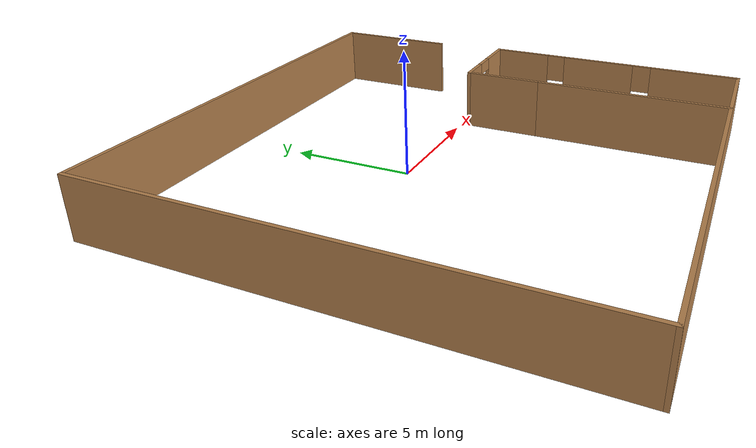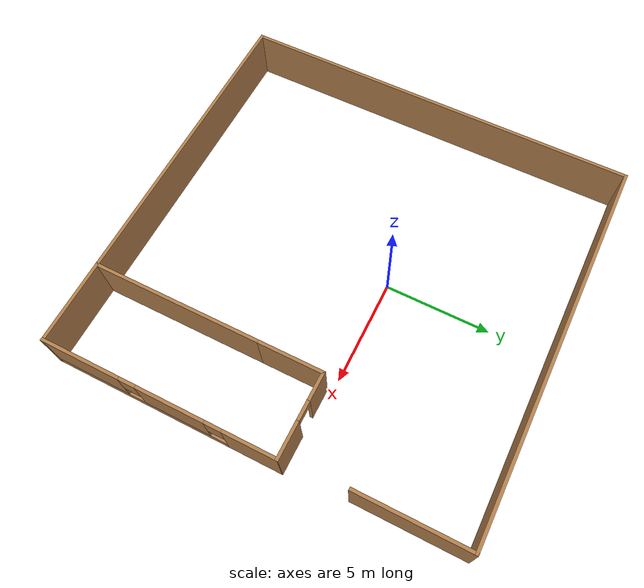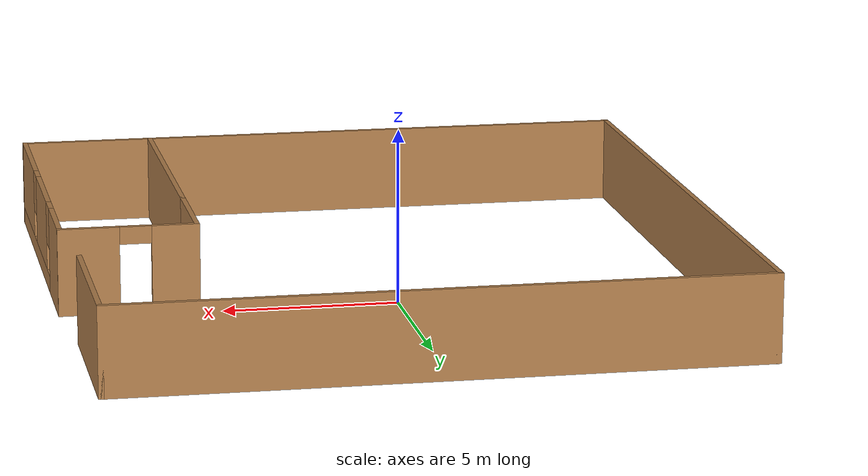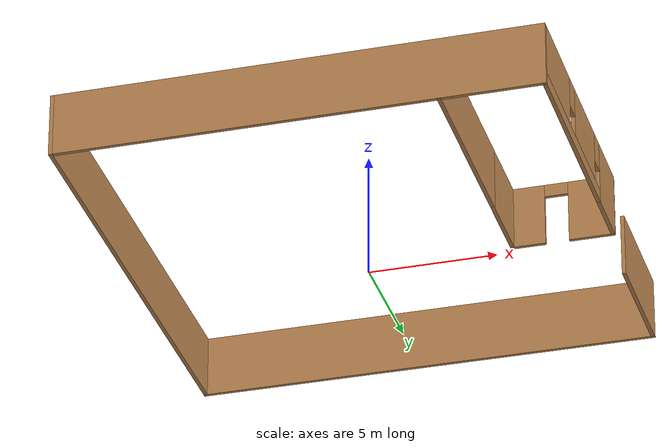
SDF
<?xml version='1.0'?>
<sdf version='1.7'>
  <model name='warehouse.world'>
    <pose>0.341818 -1.74506 0 0 -0 0</pose>
    <link name='Wall_10'>
      <collision name='Wall_10_Collision'>
        <geometry>
          <box>
            <size>19.25 0.15 2.5</size>
          </box>
        </geometry>
        <pose>0 0 1.25 0 -0 0</pose>
      </collision>
      <visual name='Wall_10_Visual'>
        <pose>0 0 1.25 0 -0 0</pose>
        <geometry>
          <box>
            <size>19.25 0.15 2.5</size>
          </box>
        </geometry>
        <material>
          <script>
            <uri>file://media/materials/scripts/gazebo.material</uri>
            <name>Gazebo/Wood</name>
          </script>
          <ambient>1 1 1 1</ambient>
        </material>
        <meta>
          <layer>0</layer>
        </meta>
      </visual>
      <pose>-9.175 -0 0 0 -0 1.5708</pose>
    </link>
    <link name='Wall_11'>
      <collision name='Wall_11_Collision'>
        <geometry>
          <box>
            <size>18.25 0.15 2.5</size>
          </box>
        </geometry>
        <pose>0 0 1.25 0 -0 0</pose>
      </collision>
      <visual name='Wall_11_Visual'>
        <pose>0 0 1.25 0 -0 0</pose>
        <geometry>
          <box>
            <size>18.25 0.15 2.5</size>
          </box>
        </geometry>
        <material>
          <script>
            <uri>file://media/materials/scripts/gazebo.material</uri>
            <name>Gazebo/Wood</name>
          </script>
          <ambient>1 1 1 1</ambient>
        </material>
        <meta>
          <layer>0</layer>
        </meta>
      </visual>
      <pose>-0.125 9.55 0 0 -0 0</pose>
    </link>
    <link name='Wall_12'>
      <collision name='Wall_12_Collision'>
        <geometry>
          <box>
            <size>5.25 0.15 2.5</size>
          </box>
        </geometry>
        <pose>0 0 1.25 0 -0 0</pose>
      </collision>
      <visual name='Wall_12_Visual'>
        <pose>0 0 1.25 0 -0 0</pose>
        <geometry>
          <box>
            <size>5.25 0.15 2.5</size>
          </box>
        </geometry>
        <material>
          <script>
            <uri>file://media/materials/scripts/gazebo.material</uri>
            <name>Gazebo/Wood</name>
          </script>
          <ambient>1 1 1 1</ambient>
        </material>
        <meta>
          <layer>0</layer>
        </meta>
      </visual>
      <pose>8.925 7 0 0 -0 -1.5708</pose>
    </link>
    <link name='Wall_14'>
      <collision name='Wall_14_Collision'>
        <geometry>
          <box>
            <size>3.25 0.15 2.5</size>
          </box>
        </geometry>
        <pose>0 0 1.25 0 -0 0</pose>
      </collision>
      <visual name='Wall_14_Visual'>
        <pose>0 0 1.25 0 -0 0</pose>
        <geometry>
          <box>
            <size>3.25 0.15 2.5</size>
          </box>
        </geometry>
        <material>
          <script>
            <uri>file://media/materials/scripts/gazebo.material</uri>
            <name>Gazebo/Wood</name>
          </script>
          <ambient>1 1 1 1</ambient>
        </material>
        <meta>
          <layer>0</layer>
        </meta>
      </visual>
      <pose>5.325 -0.121264 0 0 -0 -1.5708</pose>
    </link>
    <link name='Wall_15'>
      <collision name='Wall_15_Collision'>
        <geometry>
          <box>
            <size>8 0.15 2.5</size>
          </box>
        </geometry>
        <pose>0 0 1.25 0 -0 0</pose>
      </collision>
      <visual name='Wall_15_Visual'>
        <pose>0 0 1.25 0 -0 0</pose>
        <geometry>
          <box>
            <size>8 0.15 2.5</size>
          </box>
        </geometry>
        <material>
          <script>
            <uri>file://media/materials/scripts/gazebo.material</uri>
            <name>Gazebo/Wood</name>
          </script>
          <ambient>1 1 1 1</ambient>
        </material>
        <meta>
          <layer>0</layer>
        </meta>
      </visual>
      <pose>5.325 -5.59626 0 0 -0 -1.5708</pose>
    </link>
    <link name='Wall_7'>
      <pose>7.25 1.42874 0 0 -0 0</pose>
      <visual name='Wall_7_Visual_0'>
        <pose>-1.32235 0 1.25 0 -0 0</pose>
        <geometry>
          <box>
            <size>1.35531 0.15 2.5</size>
          </box>
        </geometry>
        <material>
          <script>
            <uri>file://media/materials/scripts/gazebo.material</uri>
            <name>Gazebo/Wood</name>
          </script>
          <ambient>1 1 1 1</ambient>
        </material>
        <meta>
          <layer>0</layer>
        </meta>
      </visual>
      <collision name='Wall_7_Collision_0'>
        <geometry>
          <box>
            <size>1.35531 0.15 2.5</size>
          </box>
        </geometry>
        <pose>-1.32235 0 1.25 0 -0 0</pose>
      </collision>
      <visual name='Wall_7_Visual_1'>
        <pose>1.12765 0 1.25 0 -0 0</pose>
        <geometry>
          <box>
            <size>1.74469 0.15 2.5</size>
          </box>
        </geometry>
        <material>
          <script>
            <uri>file://media/materials/scripts/gazebo.material</uri>
            <name>Gazebo/Wood</name>
          </script>
          <ambient>1 1 1 1</ambient>
        </material>
        <meta>
          <layer>0</layer>
        </meta>
      </visual>
      <collision name='Wall_7_Collision_1'>
        <geometry>
          <box>
            <size>1.74469 0.15 2.5</size>
          </box>
        </geometry>
        <pose>1.12765 0 1.25 0 -0 0</pose>
      </collision>
      <visual name='Wall_7_Visual_2'>
        <pose>-0.194692 0 2.25 0 -0 0</pose>
        <geometry>
          <box>
            <size>0.9 0.15 0.5</size>
          </box>
        </geometry>
        <material>
          <script>
            <uri>file://media/materials/scripts/gazebo.material</uri>
            <name>Gazebo/Wood</name>
          </script>
          <ambient>1 1 1 1</ambient>
        </material>
        <meta>
          <layer>0</layer>
        </meta>
      </visual>
      <collision name='Wall_7_Collision_2'>
        <geometry>
          <box>
            <size>0.9 0.15 0.5</size>
          </box>
        </geometry>
        <pose>-0.194692 0 2.25 0 -0 0</pose>
      </collision>
    </link>
    <link name='Wall_8'>
      <pose>9.175 -4.08126 0 0 -0 -1.5708</pose>
      <visual name='Wall_8_Visual_0'>
        <pose>-4.28997 0 1.25 0 -0 0</pose>
        <geometry>
          <box>
            <size>2.50754 0.15 2.5</size>
          </box>
        </geometry>
        <material>
          <script>
            <uri>file://media/materials/scripts/gazebo.material</uri>
            <name>Gazebo/Wood</name>
          </script>
          <ambient>1 1 1 1</ambient>
        </material>
        <meta>
          <layer>0</layer>
        </meta>
      </visual>
      <collision name='Wall_8_Collision_0'>
        <geometry>
          <box>
            <size>2.50754 0.15 2.5</size>
          </box>
        </geometry>
        <pose>-4.28997 0 1.25 0 -0 0</pose>
      </collision>
      <visual name='Wall_8_Visual_1'>
        <pose>1.25377 0 0.25 0 -0 0</pose>
        <geometry>
          <box>
            <size>8.57994 0.15 0.5</size>
          </box>
        </geometry>
        <material>
          <script>
            <uri>file://media/materials/scripts/gazebo.material</uri>
            <name>Gazebo/Wood</name>
          </script>
          <ambient>1 1 1 1</ambient>
        </material>
        <meta>
          <layer>0</layer>
        </meta>
      </visual>
      <collision name='Wall_8_Collision_1'>
        <geometry>
          <box>
            <size>8.57994 0.15 0.5</size>
          </box>
        </geometry>
        <pose>1.25377 0 0.25 0 -0 0</pose>
      </collision>
      <visual name='Wall_8_Visual_2'>
        <pose>-0.641148 0 1.5 0 -0 0</pose>
        <geometry>
          <box>
            <size>3.1901 0.15 2</size>
          </box>
        </geometry>
        <material>
          <script>
            <uri>file://media/materials/scripts/gazebo.material</uri>
            <name>Gazebo/Wood</name>
          </script>
          <ambient>1 1 1 1</ambient>
        </material>
        <meta>
          <layer>0</layer>
        </meta>
      </visual>
      <collision name='Wall_8_Collision_2'>
        <geometry>
          <box>
            <size>3.1901 0.15 2</size>
          </box>
        </geometry>
        <pose>-0.641148 0 1.5 0 -0 0</pose>
      </collision>
      <visual name='Wall_8_Visual_3'>
        <pose>3.64882 0 1.5 0 -0 0</pose>
        <geometry>
          <box>
            <size>3.78984 0.15 2</size>
          </box>
        </geometry>
        <material>
          <script>
            <uri>file://media/materials/scripts/gazebo.material</uri>
            <name>Gazebo/Wood</name>
          </script>
          <ambient>1 1 1 1</ambient>
        </material>
        <meta>
          <layer>0</layer>
        </meta>
      </visual>
      <collision name='Wall_8_Collision_3'>
        <geometry>
          <box>
            <size>3.78984 0.15 2</size>
          </box>
        </geometry>
        <pose>3.64882 0 1.5 0 -0 0</pose>
      </collision>
      <visual name='Wall_8_Visual_4'>
        <pose>-2.6362 0 1.9 0 -0 0</pose>
        <geometry>
          <box>
            <size>0.8 0.15 1.2</size>
          </box>
        </geometry>
        <material>
          <script>
            <uri>file://media/materials/scripts/gazebo.material</uri>
            <name>Gazebo/Wood</name>
          </script>
          <ambient>1 1 1 1</ambient>
        </material>
        <meta>
          <layer>0</layer>
        </meta>
      </visual>
      <collision name='Wall_8_Collision_4'>
        <geometry>
          <box>
            <size>0.8 0.15 1.2</size>
          </box>
        </geometry>
        <pose>-2.6362 0 1.9 0 -0 0</pose>
      </collision>
      <visual name='Wall_8_Visual_5'>
        <pose>1.3539 0 1.9 0 -0 0</pose>
        <geometry>
          <box>
            <size>0.8 0.15 1.2</size>
          </box>
        </geometry>
        <material>
          <script>
            <uri>file://media/materials/scripts/gazebo.material</uri>
            <name>Gazebo/Wood</name>
          </script>
          <ambient>1 1 1 1</ambient>
        </material>
        <meta>
          <layer>0</layer>
        </meta>
      </visual>
      <collision name='Wall_8_Collision_5'>
        <geometry>
          <box>
            <size>0.8 0.15 1.2</size>
          </box>
        </geometry>
        <pose>1.3539 0 1.9 0 -0 0</pose>
      </collision>
    </link>
    <link name='Wall_9'>
      <collision name='Wall_9_Collision'>
        <geometry>
          <box>
            <size>18.5 0.15 2.5</size>
          </box>
        </geometry>
        <pose>0 0 1.25 0 -0 0</pose>
      </collision>
      <visual name='Wall_9_Visual'>
        <pose>0 0 1.25 0 -0 0</pose>
        <geometry>
          <box>
            <size>18.5 0.15 2.5</size>
          </box>
        </geometry>
        <material>
          <script>
            <uri>file://media/materials/scripts/gazebo.material</uri>
            <name>Gazebo/Wood</name>
          </script>
          <ambient>1 1 1 1</ambient>
        </material>
        <meta>
          <layer>0</layer>
        </meta>
      </visual>
      <pose>-0 -9.55 0 0 -0 3.14159</pose>
    </link>
    <static>1</static>
  </model>
</sdf>
